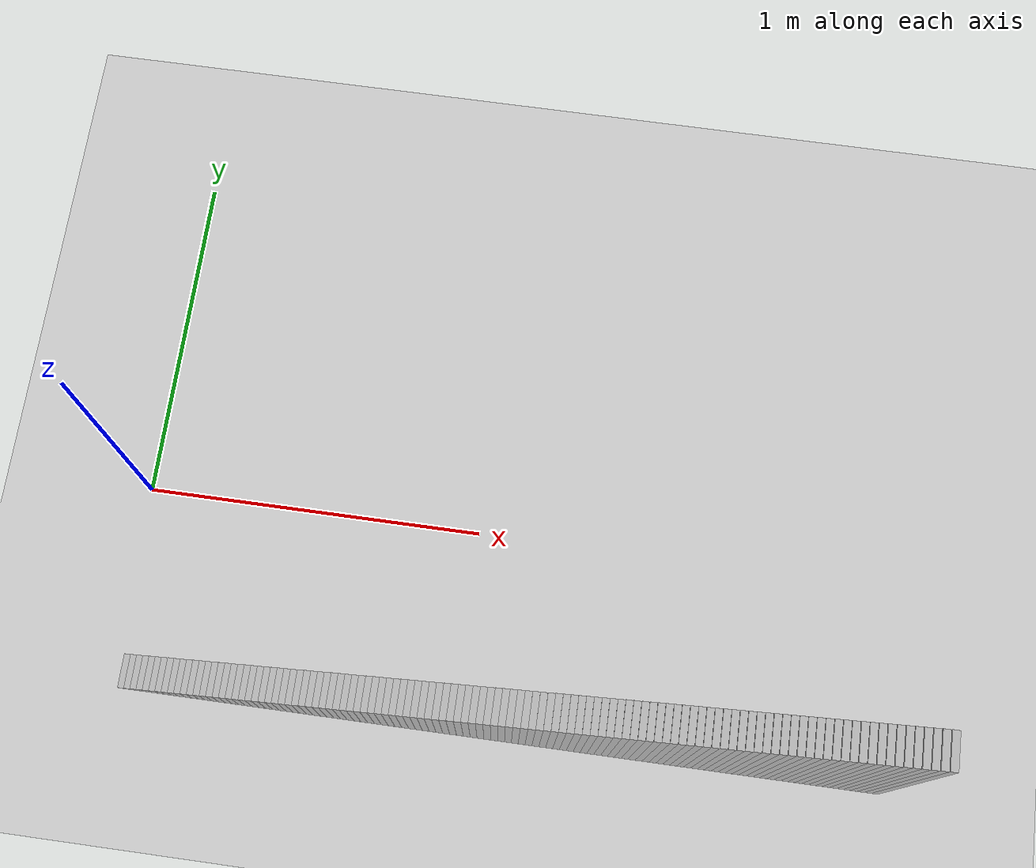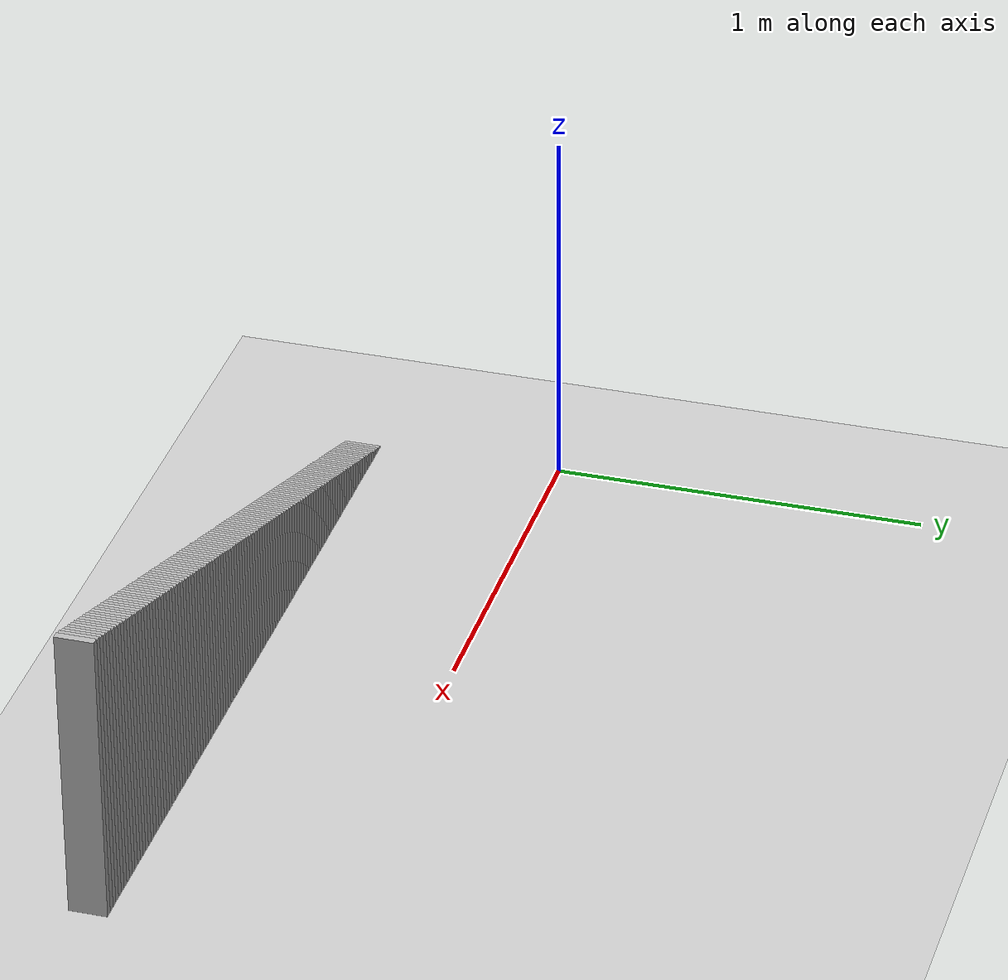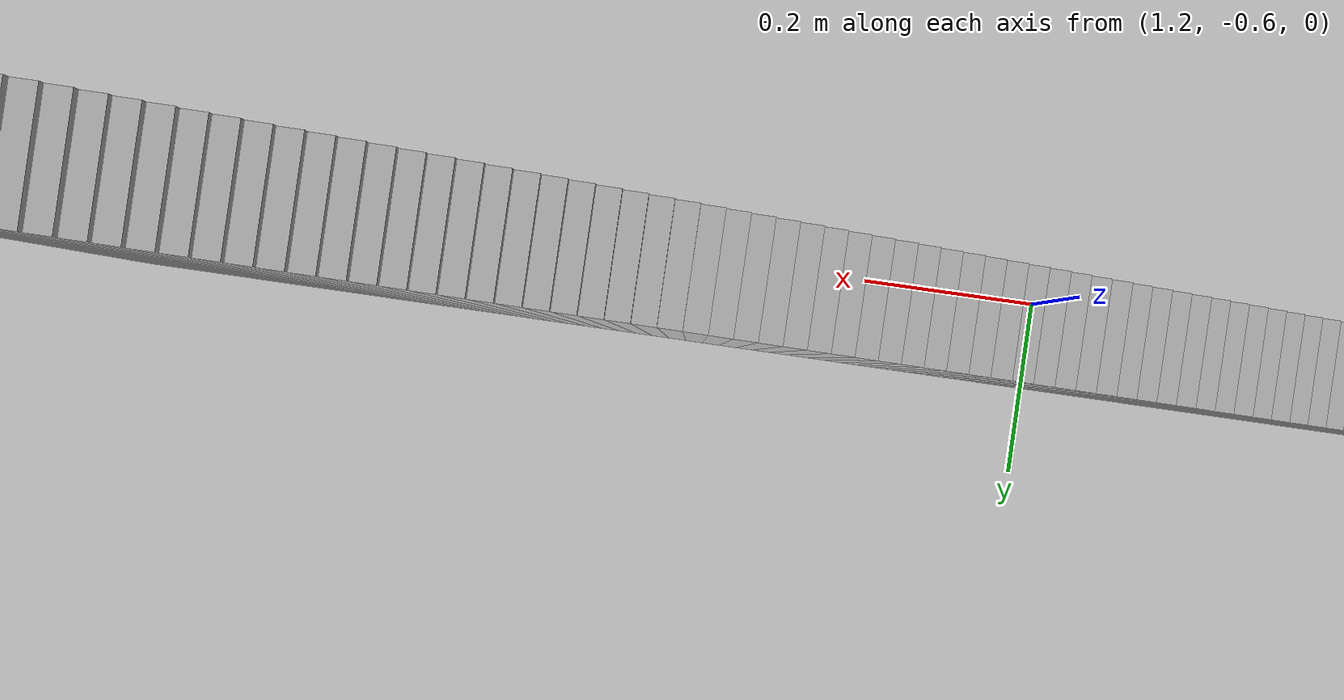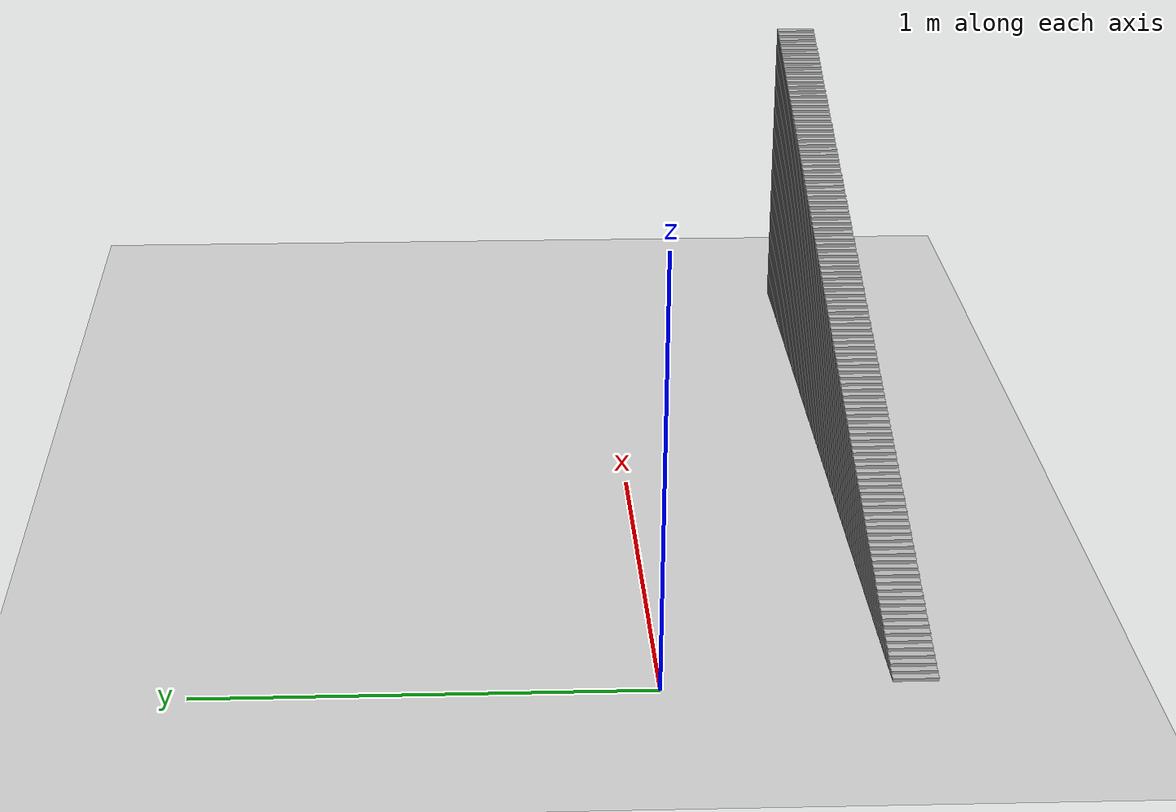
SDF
<?xml version="1.0"?>
<sdf version="1.6">
  <world name="stair_lab">
    <include><uri>model://ground_plane</uri></include>
    <include><uri>model://sun</uri></include>
    <model name="sidewall_envelope">
      <static>1</static>
      <pose>0.000 0.000 0 0 0 0</pose>
        <link name="seg0">
          <pose>0.030 -0.550 0.004 0 0 0</pose>
          <collision name="c0"><geometry><box><size>0.02 0.100 0.007</size></box></geometry></collision>
          <visual name="v0"><geometry><box><size>0.02 0.100 0.007</size></box></geometry></visual>
        </link>        <link name="seg1">
          <pose>0.050 -0.550 0.007 0 0 0</pose>
          <collision name="c1"><geometry><box><size>0.02 0.100 0.014</size></box></geometry></collision>
          <visual name="v1"><geometry><box><size>0.02 0.100 0.014</size></box></geometry></visual>
        </link>        <link name="seg2">
          <pose>0.070 -0.550 0.011 0 0 0</pose>
          <collision name="c2"><geometry><box><size>0.02 0.100 0.021</size></box></geometry></collision>
          <visual name="v2"><geometry><box><size>0.02 0.100 0.021</size></box></geometry></visual>
        </link>        <link name="seg3">
          <pose>0.090 -0.550 0.014 0 0 0</pose>
          <collision name="c3"><geometry><box><size>0.02 0.100 0.029</size></box></geometry></collision>
          <visual name="v3"><geometry><box><size>0.02 0.100 0.029</size></box></geometry></visual>
        </link>        <link name="seg4">
          <pose>0.110 -0.550 0.018 0 0 0</pose>
          <collision name="c4"><geometry><box><size>0.02 0.100 0.036</size></box></geometry></collision>
          <visual name="v4"><geometry><box><size>0.02 0.100 0.036</size></box></geometry></visual>
        </link>        <link name="seg5">
          <pose>0.130 -0.550 0.021 0 0 0</pose>
          <collision name="c5"><geometry><box><size>0.02 0.100 0.043</size></box></geometry></collision>
          <visual name="v5"><geometry><box><size>0.02 0.100 0.043</size></box></geometry></visual>
        </link>        <link name="seg6">
          <pose>0.150 -0.550 0.025 0 0 0</pose>
          <collision name="c6"><geometry><box><size>0.02 0.100 0.050</size></box></geometry></collision>
          <visual name="v6"><geometry><box><size>0.02 0.100 0.050</size></box></geometry></visual>
        </link>        <link name="seg7">
          <pose>0.170 -0.550 0.029 0 0 0</pose>
          <collision name="c7"><geometry><box><size>0.02 0.100 0.057</size></box></geometry></collision>
          <visual name="v7"><geometry><box><size>0.02 0.100 0.057</size></box></geometry></visual>
        </link>        <link name="seg8">
          <pose>0.190 -0.550 0.032 0 0 0</pose>
          <collision name="c8"><geometry><box><size>0.02 0.100 0.064</size></box></geometry></collision>
          <visual name="v8"><geometry><box><size>0.02 0.100 0.064</size></box></geometry></visual>
        </link>        <link name="seg9">
          <pose>0.210 -0.550 0.036 0 0 0</pose>
          <collision name="c9"><geometry><box><size>0.02 0.100 0.071</size></box></geometry></collision>
          <visual name="v9"><geometry><box><size>0.02 0.100 0.071</size></box></geometry></visual>
        </link>        <link name="seg10">
          <pose>0.230 -0.550 0.039 0 0 0</pose>
          <collision name="c10"><geometry><box><size>0.02 0.100 0.079</size></box></geometry></collision>
          <visual name="v10"><geometry><box><size>0.02 0.100 0.079</size></box></geometry></visual>
        </link>        <link name="seg11">
          <pose>0.250 -0.550 0.043 0 0 0</pose>
          <collision name="c11"><geometry><box><size>0.02 0.100 0.086</size></box></geometry></collision>
          <visual name="v11"><geometry><box><size>0.02 0.100 0.086</size></box></geometry></visual>
        </link>        <link name="seg12">
          <pose>0.270 -0.550 0.046 0 0 0</pose>
          <collision name="c12"><geometry><box><size>0.02 0.100 0.093</size></box></geometry></collision>
          <visual name="v12"><geometry><box><size>0.02 0.100 0.093</size></box></geometry></visual>
        </link>        <link name="seg13">
          <pose>0.290 -0.550 0.050 0 0 0</pose>
          <collision name="c13"><geometry><box><size>0.02 0.100 0.100</size></box></geometry></collision>
          <visual name="v13"><geometry><box><size>0.02 0.100 0.100</size></box></geometry></visual>
        </link>        <link name="seg14">
          <pose>0.310 -0.550 0.054 0 0 0</pose>
          <collision name="c14"><geometry><box><size>0.02 0.100 0.107</size></box></geometry></collision>
          <visual name="v14"><geometry><box><size>0.02 0.100 0.107</size></box></geometry></visual>
        </link>        <link name="seg15">
          <pose>0.330 -0.550 0.057 0 0 0</pose>
          <collision name="c15"><geometry><box><size>0.02 0.100 0.114</size></box></geometry></collision>
          <visual name="v15"><geometry><box><size>0.02 0.100 0.114</size></box></geometry></visual>
        </link>        <link name="seg16">
          <pose>0.350 -0.550 0.061 0 0 0</pose>
          <collision name="c16"><geometry><box><size>0.02 0.100 0.121</size></box></geometry></collision>
          <visual name="v16"><geometry><box><size>0.02 0.100 0.121</size></box></geometry></visual>
        </link>        <link name="seg17">
          <pose>0.370 -0.550 0.064 0 0 0</pose>
          <collision name="c17"><geometry><box><size>0.02 0.100 0.129</size></box></geometry></collision>
          <visual name="v17"><geometry><box><size>0.02 0.100 0.129</size></box></geometry></visual>
        </link>        <link name="seg18">
          <pose>0.390 -0.550 0.068 0 0 0</pose>
          <collision name="c18"><geometry><box><size>0.02 0.100 0.136</size></box></geometry></collision>
          <visual name="v18"><geometry><box><size>0.02 0.100 0.136</size></box></geometry></visual>
        </link>        <link name="seg19">
          <pose>0.410 -0.550 0.071 0 0 0</pose>
          <collision name="c19"><geometry><box><size>0.02 0.100 0.143</size></box></geometry></collision>
          <visual name="v19"><geometry><box><size>0.02 0.100 0.143</size></box></geometry></visual>
        </link>        <link name="seg20">
          <pose>0.430 -0.550 0.075 0 0 0</pose>
          <collision name="c20"><geometry><box><size>0.02 0.100 0.150</size></box></geometry></collision>
          <visual name="v20"><geometry><box><size>0.02 0.100 0.150</size></box></geometry></visual>
        </link>        <link name="seg21">
          <pose>0.450 -0.550 0.079 0 0 0</pose>
          <collision name="c21"><geometry><box><size>0.02 0.100 0.157</size></box></geometry></collision>
          <visual name="v21"><geometry><box><size>0.02 0.100 0.157</size></box></geometry></visual>
        </link>        <link name="seg22">
          <pose>0.470 -0.550 0.082 0 0 0</pose>
          <collision name="c22"><geometry><box><size>0.02 0.100 0.164</size></box></geometry></collision>
          <visual name="v22"><geometry><box><size>0.02 0.100 0.164</size></box></geometry></visual>
        </link>        <link name="seg23">
          <pose>0.490 -0.550 0.086 0 0 0</pose>
          <collision name="c23"><geometry><box><size>0.02 0.100 0.171</size></box></geometry></collision>
          <visual name="v23"><geometry><box><size>0.02 0.100 0.171</size></box></geometry></visual>
        </link>        <link name="seg24">
          <pose>0.510 -0.550 0.089 0 0 0</pose>
          <collision name="c24"><geometry><box><size>0.02 0.100 0.179</size></box></geometry></collision>
          <visual name="v24"><geometry><box><size>0.02 0.100 0.179</size></box></geometry></visual>
        </link>        <link name="seg25">
          <pose>0.530 -0.550 0.093 0 0 0</pose>
          <collision name="c25"><geometry><box><size>0.02 0.100 0.186</size></box></geometry></collision>
          <visual name="v25"><geometry><box><size>0.02 0.100 0.186</size></box></geometry></visual>
        </link>        <link name="seg26">
          <pose>0.550 -0.550 0.096 0 0 0</pose>
          <collision name="c26"><geometry><box><size>0.02 0.100 0.193</size></box></geometry></collision>
          <visual name="v26"><geometry><box><size>0.02 0.100 0.193</size></box></geometry></visual>
        </link>        <link name="seg27">
          <pose>0.570 -0.550 0.100 0 0 0</pose>
          <collision name="c27"><geometry><box><size>0.02 0.100 0.200</size></box></geometry></collision>
          <visual name="v27"><geometry><box><size>0.02 0.100 0.200</size></box></geometry></visual>
        </link>        <link name="seg28">
          <pose>0.590 -0.550 0.104 0 0 0</pose>
          <collision name="c28"><geometry><box><size>0.02 0.100 0.207</size></box></geometry></collision>
          <visual name="v28"><geometry><box><size>0.02 0.100 0.207</size></box></geometry></visual>
        </link>        <link name="seg29">
          <pose>0.610 -0.550 0.107 0 0 0</pose>
          <collision name="c29"><geometry><box><size>0.02 0.100 0.214</size></box></geometry></collision>
          <visual name="v29"><geometry><box><size>0.02 0.100 0.214</size></box></geometry></visual>
        </link>        <link name="seg30">
          <pose>0.630 -0.550 0.111 0 0 0</pose>
          <collision name="c30"><geometry><box><size>0.02 0.100 0.221</size></box></geometry></collision>
          <visual name="v30"><geometry><box><size>0.02 0.100 0.221</size></box></geometry></visual>
        </link>        <link name="seg31">
          <pose>0.650 -0.550 0.114 0 0 0</pose>
          <collision name="c31"><geometry><box><size>0.02 0.100 0.229</size></box></geometry></collision>
          <visual name="v31"><geometry><box><size>0.02 0.100 0.229</size></box></geometry></visual>
        </link>        <link name="seg32">
          <pose>0.670 -0.550 0.118 0 0 0</pose>
          <collision name="c32"><geometry><box><size>0.02 0.100 0.236</size></box></geometry></collision>
          <visual name="v32"><geometry><box><size>0.02 0.100 0.236</size></box></geometry></visual>
        </link>        <link name="seg33">
          <pose>0.690 -0.550 0.121 0 0 0</pose>
          <collision name="c33"><geometry><box><size>0.02 0.100 0.243</size></box></geometry></collision>
          <visual name="v33"><geometry><box><size>0.02 0.100 0.243</size></box></geometry></visual>
        </link>        <link name="seg34">
          <pose>0.710 -0.550 0.125 0 0 0</pose>
          <collision name="c34"><geometry><box><size>0.02 0.100 0.250</size></box></geometry></collision>
          <visual name="v34"><geometry><box><size>0.02 0.100 0.250</size></box></geometry></visual>
        </link>        <link name="seg35">
          <pose>0.730 -0.550 0.129 0 0 0</pose>
          <collision name="c35"><geometry><box><size>0.02 0.100 0.257</size></box></geometry></collision>
          <visual name="v35"><geometry><box><size>0.02 0.100 0.257</size></box></geometry></visual>
        </link>        <link name="seg36">
          <pose>0.750 -0.550 0.132 0 0 0</pose>
          <collision name="c36"><geometry><box><size>0.02 0.100 0.264</size></box></geometry></collision>
          <visual name="v36"><geometry><box><size>0.02 0.100 0.264</size></box></geometry></visual>
        </link>        <link name="seg37">
          <pose>0.770 -0.550 0.136 0 0 0</pose>
          <collision name="c37"><geometry><box><size>0.02 0.100 0.271</size></box></geometry></collision>
          <visual name="v37"><geometry><box><size>0.02 0.100 0.271</size></box></geometry></visual>
        </link>        <link name="seg38">
          <pose>0.790 -0.550 0.139 0 0 0</pose>
          <collision name="c38"><geometry><box><size>0.02 0.100 0.279</size></box></geometry></collision>
          <visual name="v38"><geometry><box><size>0.02 0.100 0.279</size></box></geometry></visual>
        </link>        <link name="seg39">
          <pose>0.810 -0.550 0.143 0 0 0</pose>
          <collision name="c39"><geometry><box><size>0.02 0.100 0.286</size></box></geometry></collision>
          <visual name="v39"><geometry><box><size>0.02 0.100 0.286</size></box></geometry></visual>
        </link>        <link name="seg40">
          <pose>0.830 -0.550 0.146 0 0 0</pose>
          <collision name="c40"><geometry><box><size>0.02 0.100 0.293</size></box></geometry></collision>
          <visual name="v40"><geometry><box><size>0.02 0.100 0.293</size></box></geometry></visual>
        </link>        <link name="seg41">
          <pose>0.850 -0.550 0.150 0 0 0</pose>
          <collision name="c41"><geometry><box><size>0.02 0.100 0.300</size></box></geometry></collision>
          <visual name="v41"><geometry><box><size>0.02 0.100 0.300</size></box></geometry></visual>
        </link>        <link name="seg42">
          <pose>0.870 -0.550 0.154 0 0 0</pose>
          <collision name="c42"><geometry><box><size>0.02 0.100 0.307</size></box></geometry></collision>
          <visual name="v42"><geometry><box><size>0.02 0.100 0.307</size></box></geometry></visual>
        </link>        <link name="seg43">
          <pose>0.890 -0.550 0.157 0 0 0</pose>
          <collision name="c43"><geometry><box><size>0.02 0.100 0.314</size></box></geometry></collision>
          <visual name="v43"><geometry><box><size>0.02 0.100 0.314</size></box></geometry></visual>
        </link>        <link name="seg44">
          <pose>0.910 -0.550 0.161 0 0 0</pose>
          <collision name="c44"><geometry><box><size>0.02 0.100 0.321</size></box></geometry></collision>
          <visual name="v44"><geometry><box><size>0.02 0.100 0.321</size></box></geometry></visual>
        </link>        <link name="seg45">
          <pose>0.930 -0.550 0.164 0 0 0</pose>
          <collision name="c45"><geometry><box><size>0.02 0.100 0.329</size></box></geometry></collision>
          <visual name="v45"><geometry><box><size>0.02 0.100 0.329</size></box></geometry></visual>
        </link>        <link name="seg46">
          <pose>0.950 -0.550 0.168 0 0 0</pose>
          <collision name="c46"><geometry><box><size>0.02 0.100 0.336</size></box></geometry></collision>
          <visual name="v46"><geometry><box><size>0.02 0.100 0.336</size></box></geometry></visual>
        </link>        <link name="seg47">
          <pose>0.970 -0.550 0.171 0 0 0</pose>
          <collision name="c47"><geometry><box><size>0.02 0.100 0.343</size></box></geometry></collision>
          <visual name="v47"><geometry><box><size>0.02 0.100 0.343</size></box></geometry></visual>
        </link>        <link name="seg48">
          <pose>0.990 -0.550 0.175 0 0 0</pose>
          <collision name="c48"><geometry><box><size>0.02 0.100 0.350</size></box></geometry></collision>
          <visual name="v48"><geometry><box><size>0.02 0.100 0.350</size></box></geometry></visual>
        </link>        <link name="seg49">
          <pose>1.010 -0.550 0.179 0 0 0</pose>
          <collision name="c49"><geometry><box><size>0.02 0.100 0.357</size></box></geometry></collision>
          <visual name="v49"><geometry><box><size>0.02 0.100 0.357</size></box></geometry></visual>
        </link>        <link name="seg50">
          <pose>1.030 -0.550 0.182 0 0 0</pose>
          <collision name="c50"><geometry><box><size>0.02 0.100 0.364</size></box></geometry></collision>
          <visual name="v50"><geometry><box><size>0.02 0.100 0.364</size></box></geometry></visual>
        </link>        <link name="seg51">
          <pose>1.050 -0.550 0.186 0 0 0</pose>
          <collision name="c51"><geometry><box><size>0.02 0.100 0.371</size></box></geometry></collision>
          <visual name="v51"><geometry><box><size>0.02 0.100 0.371</size></box></geometry></visual>
        </link>        <link name="seg52">
          <pose>1.070 -0.550 0.189 0 0 0</pose>
          <collision name="c52"><geometry><box><size>0.02 0.100 0.379</size></box></geometry></collision>
          <visual name="v52"><geometry><box><size>0.02 0.100 0.379</size></box></geometry></visual>
        </link>        <link name="seg53">
          <pose>1.090 -0.550 0.193 0 0 0</pose>
          <collision name="c53"><geometry><box><size>0.02 0.100 0.386</size></box></geometry></collision>
          <visual name="v53"><geometry><box><size>0.02 0.100 0.386</size></box></geometry></visual>
        </link>        <link name="seg54">
          <pose>1.110 -0.550 0.196 0 0 0</pose>
          <collision name="c54"><geometry><box><size>0.02 0.100 0.393</size></box></geometry></collision>
          <visual name="v54"><geometry><box><size>0.02 0.100 0.393</size></box></geometry></visual>
        </link>        <link name="seg55">
          <pose>1.130 -0.550 0.200 0 0 0</pose>
          <collision name="c55"><geometry><box><size>0.02 0.100 0.400</size></box></geometry></collision>
          <visual name="v55"><geometry><box><size>0.02 0.100 0.400</size></box></geometry></visual>
        </link>        <link name="seg56">
          <pose>1.150 -0.550 0.204 0 0 0</pose>
          <collision name="c56"><geometry><box><size>0.02 0.100 0.407</size></box></geometry></collision>
          <visual name="v56"><geometry><box><size>0.02 0.100 0.407</size></box></geometry></visual>
        </link>        <link name="seg57">
          <pose>1.170 -0.550 0.207 0 0 0</pose>
          <collision name="c57"><geometry><box><size>0.02 0.100 0.414</size></box></geometry></collision>
          <visual name="v57"><geometry><box><size>0.02 0.100 0.414</size></box></geometry></visual>
        </link>        <link name="seg58">
          <pose>1.190 -0.550 0.211 0 0 0</pose>
          <collision name="c58"><geometry><box><size>0.02 0.100 0.421</size></box></geometry></collision>
          <visual name="v58"><geometry><box><size>0.02 0.100 0.421</size></box></geometry></visual>
        </link>        <link name="seg59">
          <pose>1.210 -0.550 0.214 0 0 0</pose>
          <collision name="c59"><geometry><box><size>0.02 0.100 0.429</size></box></geometry></collision>
          <visual name="v59"><geometry><box><size>0.02 0.100 0.429</size></box></geometry></visual>
        </link>        <link name="seg60">
          <pose>1.230 -0.550 0.218 0 0 0</pose>
          <collision name="c60"><geometry><box><size>0.02 0.100 0.436</size></box></geometry></collision>
          <visual name="v60"><geometry><box><size>0.02 0.100 0.436</size></box></geometry></visual>
        </link>        <link name="seg61">
          <pose>1.250 -0.550 0.221 0 0 0</pose>
          <collision name="c61"><geometry><box><size>0.02 0.100 0.443</size></box></geometry></collision>
          <visual name="v61"><geometry><box><size>0.02 0.100 0.443</size></box></geometry></visual>
        </link>        <link name="seg62">
          <pose>1.270 -0.550 0.225 0 0 0</pose>
          <collision name="c62"><geometry><box><size>0.02 0.100 0.450</size></box></geometry></collision>
          <visual name="v62"><geometry><box><size>0.02 0.100 0.450</size></box></geometry></visual>
        </link>        <link name="seg63">
          <pose>1.290 -0.550 0.229 0 0 0</pose>
          <collision name="c63"><geometry><box><size>0.02 0.100 0.457</size></box></geometry></collision>
          <visual name="v63"><geometry><box><size>0.02 0.100 0.457</size></box></geometry></visual>
        </link>        <link name="seg64">
          <pose>1.310 -0.550 0.232 0 0 0</pose>
          <collision name="c64"><geometry><box><size>0.02 0.100 0.464</size></box></geometry></collision>
          <visual name="v64"><geometry><box><size>0.02 0.100 0.464</size></box></geometry></visual>
        </link>        <link name="seg65">
          <pose>1.330 -0.550 0.236 0 0 0</pose>
          <collision name="c65"><geometry><box><size>0.02 0.100 0.471</size></box></geometry></collision>
          <visual name="v65"><geometry><box><size>0.02 0.100 0.471</size></box></geometry></visual>
        </link>        <link name="seg66">
          <pose>1.350 -0.550 0.239 0 0 0</pose>
          <collision name="c66"><geometry><box><size>0.02 0.100 0.479</size></box></geometry></collision>
          <visual name="v66"><geometry><box><size>0.02 0.100 0.479</size></box></geometry></visual>
        </link>        <link name="seg67">
          <pose>1.370 -0.550 0.243 0 0 0</pose>
          <collision name="c67"><geometry><box><size>0.02 0.100 0.486</size></box></geometry></collision>
          <visual name="v67"><geometry><box><size>0.02 0.100 0.486</size></box></geometry></visual>
        </link>        <link name="seg68">
          <pose>1.390 -0.550 0.246 0 0 0</pose>
          <collision name="c68"><geometry><box><size>0.02 0.100 0.493</size></box></geometry></collision>
          <visual name="v68"><geometry><box><size>0.02 0.100 0.493</size></box></geometry></visual>
        </link>        <link name="seg69">
          <pose>1.410 -0.550 0.250 0 0 0</pose>
          <collision name="c69"><geometry><box><size>0.02 0.100 0.500</size></box></geometry></collision>
          <visual name="v69"><geometry><box><size>0.02 0.100 0.500</size></box></geometry></visual>
        </link>        <link name="seg70">
          <pose>1.430 -0.550 0.254 0 0 0</pose>
          <collision name="c70"><geometry><box><size>0.02 0.100 0.507</size></box></geometry></collision>
          <visual name="v70"><geometry><box><size>0.02 0.100 0.507</size></box></geometry></visual>
        </link>        <link name="seg71">
          <pose>1.450 -0.550 0.257 0 0 0</pose>
          <collision name="c71"><geometry><box><size>0.02 0.100 0.514</size></box></geometry></collision>
          <visual name="v71"><geometry><box><size>0.02 0.100 0.514</size></box></geometry></visual>
        </link>        <link name="seg72">
          <pose>1.470 -0.550 0.261 0 0 0</pose>
          <collision name="c72"><geometry><box><size>0.02 0.100 0.521</size></box></geometry></collision>
          <visual name="v72"><geometry><box><size>0.02 0.100 0.521</size></box></geometry></visual>
        </link>        <link name="seg73">
          <pose>1.490 -0.550 0.264 0 0 0</pose>
          <collision name="c73"><geometry><box><size>0.02 0.100 0.529</size></box></geometry></collision>
          <visual name="v73"><geometry><box><size>0.02 0.100 0.529</size></box></geometry></visual>
        </link>        <link name="seg74">
          <pose>1.510 -0.550 0.268 0 0 0</pose>
          <collision name="c74"><geometry><box><size>0.02 0.100 0.536</size></box></geometry></collision>
          <visual name="v74"><geometry><box><size>0.02 0.100 0.536</size></box></geometry></visual>
        </link>        <link name="seg75">
          <pose>1.530 -0.550 0.271 0 0 0</pose>
          <collision name="c75"><geometry><box><size>0.02 0.100 0.543</size></box></geometry></collision>
          <visual name="v75"><geometry><box><size>0.02 0.100 0.543</size></box></geometry></visual>
        </link>        <link name="seg76">
          <pose>1.550 -0.550 0.275 0 0 0</pose>
          <collision name="c76"><geometry><box><size>0.02 0.100 0.550</size></box></geometry></collision>
          <visual name="v76"><geometry><box><size>0.02 0.100 0.550</size></box></geometry></visual>
        </link>        <link name="seg77">
          <pose>1.570 -0.550 0.279 0 0 0</pose>
          <collision name="c77"><geometry><box><size>0.02 0.100 0.557</size></box></geometry></collision>
          <visual name="v77"><geometry><box><size>0.02 0.100 0.557</size></box></geometry></visual>
        </link>        <link name="seg78">
          <pose>1.590 -0.550 0.282 0 0 0</pose>
          <collision name="c78"><geometry><box><size>0.02 0.100 0.564</size></box></geometry></collision>
          <visual name="v78"><geometry><box><size>0.02 0.100 0.564</size></box></geometry></visual>
        </link>        <link name="seg79">
          <pose>1.610 -0.550 0.286 0 0 0</pose>
          <collision name="c79"><geometry><box><size>0.02 0.100 0.571</size></box></geometry></collision>
          <visual name="v79"><geometry><box><size>0.02 0.100 0.571</size></box></geometry></visual>
        </link>        <link name="seg80">
          <pose>1.630 -0.550 0.289 0 0 0</pose>
          <collision name="c80"><geometry><box><size>0.02 0.100 0.579</size></box></geometry></collision>
          <visual name="v80"><geometry><box><size>0.02 0.100 0.579</size></box></geometry></visual>
        </link>        <link name="seg81">
          <pose>1.650 -0.550 0.293 0 0 0</pose>
          <collision name="c81"><geometry><box><size>0.02 0.100 0.586</size></box></geometry></collision>
          <visual name="v81"><geometry><box><size>0.02 0.100 0.586</size></box></geometry></visual>
        </link>        <link name="seg82">
          <pose>1.670 -0.550 0.296 0 0 0</pose>
          <collision name="c82"><geometry><box><size>0.02 0.100 0.593</size></box></geometry></collision>
          <visual name="v82"><geometry><box><size>0.02 0.100 0.593</size></box></geometry></visual>
        </link>        <link name="seg83">
          <pose>1.690 -0.550 0.300 0 0 0</pose>
          <collision name="c83"><geometry><box><size>0.02 0.100 0.600</size></box></geometry></collision>
          <visual name="v83"><geometry><box><size>0.02 0.100 0.600</size></box></geometry></visual>
        </link>        <link name="seg84">
          <pose>1.710 -0.550 0.304 0 0 0</pose>
          <collision name="c84"><geometry><box><size>0.02 0.100 0.607</size></box></geometry></collision>
          <visual name="v84"><geometry><box><size>0.02 0.100 0.607</size></box></geometry></visual>
        </link>        <link name="seg85">
          <pose>1.730 -0.550 0.307 0 0 0</pose>
          <collision name="c85"><geometry><box><size>0.02 0.100 0.614</size></box></geometry></collision>
          <visual name="v85"><geometry><box><size>0.02 0.100 0.614</size></box></geometry></visual>
        </link>        <link name="seg86">
          <pose>1.750 -0.550 0.311 0 0 0</pose>
          <collision name="c86"><geometry><box><size>0.02 0.100 0.621</size></box></geometry></collision>
          <visual name="v86"><geometry><box><size>0.02 0.100 0.621</size></box></geometry></visual>
        </link>        <link name="seg87">
          <pose>1.770 -0.550 0.314 0 0 0</pose>
          <collision name="c87"><geometry><box><size>0.02 0.100 0.629</size></box></geometry></collision>
          <visual name="v87"><geometry><box><size>0.02 0.100 0.629</size></box></geometry></visual>
        </link>        <link name="seg88">
          <pose>1.790 -0.550 0.318 0 0 0</pose>
          <collision name="c88"><geometry><box><size>0.02 0.100 0.636</size></box></geometry></collision>
          <visual name="v88"><geometry><box><size>0.02 0.100 0.636</size></box></geometry></visual>
        </link>        <link name="seg89">
          <pose>1.810 -0.550 0.321 0 0 0</pose>
          <collision name="c89"><geometry><box><size>0.02 0.100 0.643</size></box></geometry></collision>
          <visual name="v89"><geometry><box><size>0.02 0.100 0.643</size></box></geometry></visual>
        </link>        <link name="seg90">
          <pose>1.830 -0.550 0.325 0 0 0</pose>
          <collision name="c90"><geometry><box><size>0.02 0.100 0.650</size></box></geometry></collision>
          <visual name="v90"><geometry><box><size>0.02 0.100 0.650</size></box></geometry></visual>
        </link>        <link name="seg91">
          <pose>1.850 -0.550 0.329 0 0 0</pose>
          <collision name="c91"><geometry><box><size>0.02 0.100 0.657</size></box></geometry></collision>
          <visual name="v91"><geometry><box><size>0.02 0.100 0.657</size></box></geometry></visual>
        </link>        <link name="seg92">
          <pose>1.870 -0.550 0.332 0 0 0</pose>
          <collision name="c92"><geometry><box><size>0.02 0.100 0.664</size></box></geometry></collision>
          <visual name="v92"><geometry><box><size>0.02 0.100 0.664</size></box></geometry></visual>
        </link>        <link name="seg93">
          <pose>1.890 -0.550 0.336 0 0 0</pose>
          <collision name="c93"><geometry><box><size>0.02 0.100 0.671</size></box></geometry></collision>
          <visual name="v93"><geometry><box><size>0.02 0.100 0.671</size></box></geometry></visual>
        </link>        <link name="seg94">
          <pose>1.910 -0.550 0.339 0 0 0</pose>
          <collision name="c94"><geometry><box><size>0.02 0.100 0.679</size></box></geometry></collision>
          <visual name="v94"><geometry><box><size>0.02 0.100 0.679</size></box></geometry></visual>
        </link>        <link name="seg95">
          <pose>1.930 -0.550 0.343 0 0 0</pose>
          <collision name="c95"><geometry><box><size>0.02 0.100 0.686</size></box></geometry></collision>
          <visual name="v95"><geometry><box><size>0.02 0.100 0.686</size></box></geometry></visual>
        </link>        <link name="seg96">
          <pose>1.950 -0.550 0.346 0 0 0</pose>
          <collision name="c96"><geometry><box><size>0.02 0.100 0.693</size></box></geometry></collision>
          <visual name="v96"><geometry><box><size>0.02 0.100 0.693</size></box></geometry></visual>
        </link>        <link name="seg97">
          <pose>1.970 -0.550 0.350 0 0 0</pose>
          <collision name="c97"><geometry><box><size>0.02 0.100 0.700</size></box></geometry></collision>
          <visual name="v97"><geometry><box><size>0.02 0.100 0.700</size></box></geometry></visual>
        </link>        <link name="seg98">
          <pose>1.990 -0.550 0.354 0 0 0</pose>
          <collision name="c98"><geometry><box><size>0.02 0.100 0.707</size></box></geometry></collision>
          <visual name="v98"><geometry><box><size>0.02 0.100 0.707</size></box></geometry></visual>
        </link>        <link name="seg99">
          <pose>2.010 -0.550 0.357 0 0 0</pose>
          <collision name="c99"><geometry><box><size>0.02 0.100 0.714</size></box></geometry></collision>
          <visual name="v99"><geometry><box><size>0.02 0.100 0.714</size></box></geometry></visual>
        </link>        <link name="seg100">
          <pose>2.030 -0.550 0.361 0 0 0</pose>
          <collision name="c100"><geometry><box><size>0.02 0.100 0.721</size></box></geometry></collision>
          <visual name="v100"><geometry><box><size>0.02 0.100 0.721</size></box></geometry></visual>
        </link>        <link name="seg101">
          <pose>2.050 -0.550 0.364 0 0 0</pose>
          <collision name="c101"><geometry><box><size>0.02 0.100 0.729</size></box></geometry></collision>
          <visual name="v101"><geometry><box><size>0.02 0.100 0.729</size></box></geometry></visual>
        </link>        <link name="seg102">
          <pose>2.070 -0.550 0.368 0 0 0</pose>
          <collision name="c102"><geometry><box><size>0.02 0.100 0.736</size></box></geometry></collision>
          <visual name="v102"><geometry><box><size>0.02 0.100 0.736</size></box></geometry></visual>
        </link>        <link name="seg103">
          <pose>2.090 -0.550 0.371 0 0 0</pose>
          <collision name="c103"><geometry><box><size>0.02 0.100 0.743</size></box></geometry></collision>
          <visual name="v103"><geometry><box><size>0.02 0.100 0.743</size></box></geometry></visual>
        </link>        <link name="seg104">
          <pose>2.110 -0.550 0.375 0 0 0</pose>
          <collision name="c104"><geometry><box><size>0.02 0.100 0.750</size></box></geometry></collision>
          <visual name="v104"><geometry><box><size>0.02 0.100 0.750</size></box></geometry></visual>
        </link>        <link name="seg105">
          <pose>2.130 -0.550 0.379 0 0 0</pose>
          <collision name="c105"><geometry><box><size>0.02 0.100 0.757</size></box></geometry></collision>
          <visual name="v105"><geometry><box><size>0.02 0.100 0.757</size></box></geometry></visual>
        </link>        <link name="seg106">
          <pose>2.150 -0.550 0.382 0 0 0</pose>
          <collision name="c106"><geometry><box><size>0.02 0.100 0.764</size></box></geometry></collision>
          <visual name="v106"><geometry><box><size>0.02 0.100 0.764</size></box></geometry></visual>
        </link>        <link name="seg107">
          <pose>2.170 -0.550 0.386 0 0 0</pose>
          <collision name="c107"><geometry><box><size>0.02 0.100 0.771</size></box></geometry></collision>
          <visual name="v107"><geometry><box><size>0.02 0.100 0.771</size></box></geometry></visual>
        </link>        <link name="seg108">
          <pose>2.190 -0.550 0.389 0 0 0</pose>
          <collision name="c108"><geometry><box><size>0.02 0.100 0.779</size></box></geometry></collision>
          <visual name="v108"><geometry><box><size>0.02 0.100 0.779</size></box></geometry></visual>
        </link>        <link name="seg109">
          <pose>2.210 -0.550 0.393 0 0 0</pose>
          <collision name="c109"><geometry><box><size>0.02 0.100 0.786</size></box></geometry></collision>
          <visual name="v109"><geometry><box><size>0.02 0.100 0.786</size></box></geometry></visual>
        </link>        <link name="seg110">
          <pose>2.230 -0.550 0.396 0 0 0</pose>
          <collision name="c110"><geometry><box><size>0.02 0.100 0.793</size></box></geometry></collision>
          <visual name="v110"><geometry><box><size>0.02 0.100 0.793</size></box></geometry></visual>
        </link>
    </model>

  </world>
</sdf>
